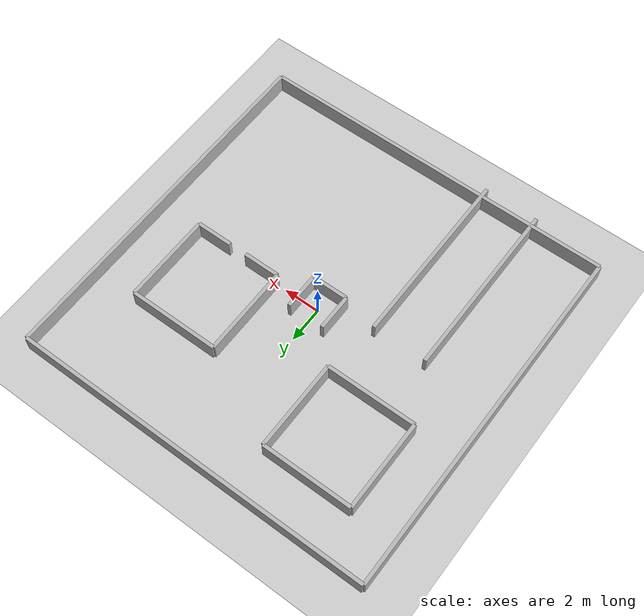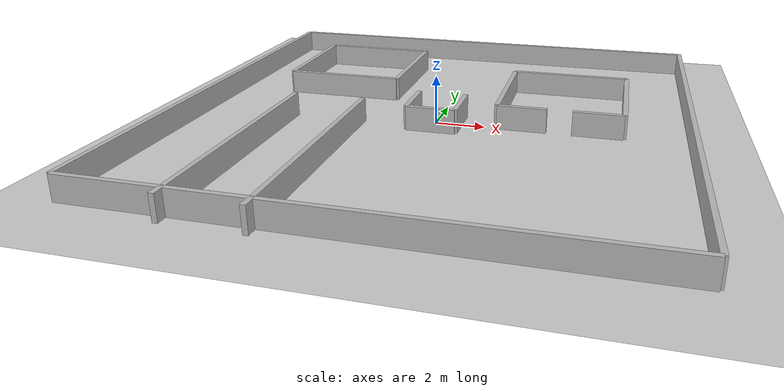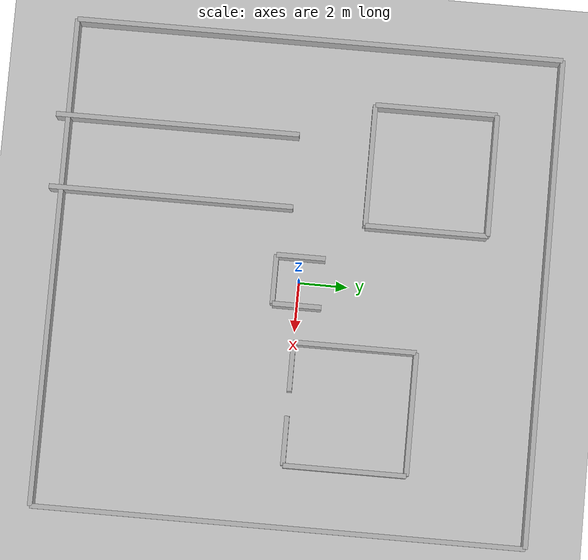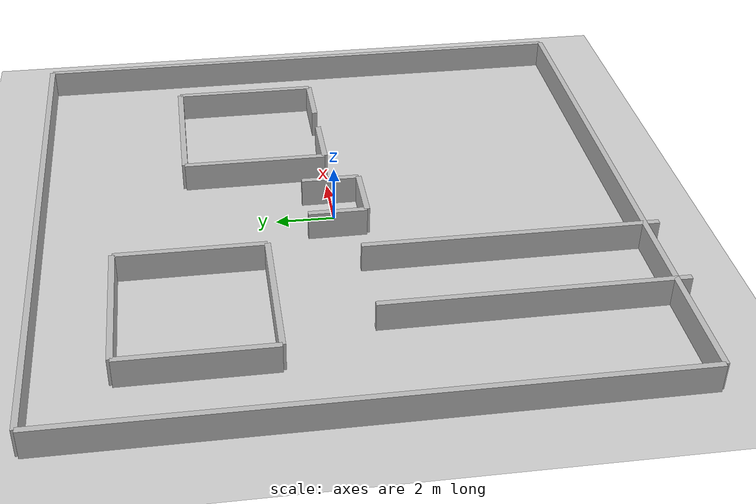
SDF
<sdf version="1.6">
  <world name="indoor_test">
    <include>
      <uri>model://ground_plane</uri>
    </include>
    <include>
      <uri>model://sun</uri>
    </include>

    <!-- Smaller U-shape wall around spawn (2x2m) -->
    <model name="spawn_shroud_small">
      <static>true</static>
      <link name="walls">
        <!-- Back wall -->
        <visual name="u_back">
          <pose>0 -1 0.5 0 0 0</pose>
          <geometry><box><size>2 0.2 1</size></box></geometry>
        </visual>
        <collision name="u_back">
          <pose>0 -1 0.5 0 0 0</pose>
          <geometry><box><size>2 0.2 1</size></box></geometry>
        </collision>

        <!-- Left wall -->
        <visual name="u_left">
          <pose>-1 0 0.5 0 0 0</pose>
          <geometry><box><size>0.2 2 1</size></box></geometry>
        </visual>
        <collision name="u_left">
          <pose>-1 0 0.5 0 0 0</pose>
          <geometry><box><size>0.2 2 1</size></box></geometry>
        </collision>

        <!-- Right wall -->
        <visual name="u_right">
          <pose>1 0 0.5 0 0 0</pose>
          <geometry><box><size>0.2 2 1</size></box></geometry>
        </visual>
        <collision name="u_right">
          <pose>1 0 0.5 0 0 0</pose>
          <geometry><box><size>0.2 2 1</size></box></geometry>
        </collision>
      </link>
    </model>

    <!-- Outer Walls (20x20 Arena) -->
    <model name="outer_walls">
      <static>true</static>
      <link name="walls">
        <visual name="north">
          <pose>0 10 0.5 0 0 0</pose>
          <geometry><box><size>20 0.2 1</size></box></geometry>
        </visual>
        <collision name="north">
          <pose>0 10 0.5 0 0 0</pose>
          <geometry><box><size>20 0.2 1</size></box></geometry>
        </collision>

        <visual name="south">
          <pose>0 -10 0.5 0 0 0</pose>
          <geometry><box><size>20 0.2 1</size></box></geometry>
        </visual>
        <collision name="south">
          <pose>0 -10 0.5 0 0 0</pose>
          <geometry><box><size>20 0.2 1</size></box></geometry>
        </collision>

        <visual name="west">
          <pose>-10 0 0.5 0 0 0</pose>
          <geometry><box><size>0.2 20 1</size></box></geometry>
        </visual>
        <collision name="west">
          <pose>-10 0 0.5 0 0 0</pose>
          <geometry><box><size>0.2 20 1</size></box></geometry>
        </collision>

        <visual name="east">
          <pose>10 0 0.5 0 0 0</pose>
          <geometry><box><size>0.2 20 1</size></box></geometry>
        </visual>
        <collision name="east">
          <pose>10 0 0.5 0 0 0</pose>
          <geometry><box><size>0.2 20 1</size></box></geometry>
        </collision>
      </link>
    </model>

    <!-- Corridor (Widened to 3m) -->
    <model name="corridor">
      <static>true</static>
      <link name="walls">
        <visual name="c_wall1">
          <pose>-6 -5.5 0.5 0 0 0</pose>
          <geometry><box><size>0.2 10 1</size></box></geometry>
        </visual>
        <collision name="c_wall1">
          <pose>-6 -5.5 0.5 0 0 0</pose>
          <geometry><box><size>0.2 10 1</size></box></geometry>
        </collision>

        <visual name="c_wall2">
          <pose>-3 -5.5 0.5 0 0 0</pose>
          <geometry><box><size>0.2 10 1</size></box></geometry>
        </visual>
        <collision name="c_wall2">
          <pose>-3 -5.5 0.5 0 0 0</pose>
          <geometry><box><size>0.2 10 1</size></box></geometry>
        </collision>
      </link>
    </model>

    <!-- Room 1 (5x5m) with doorway gap -->
    <model name="room_1">
      <static>true</static>
      <link name="walls">
        <visual name="r1_west">
          <pose>2.5 2.5 0.5 0 0 0</pose>
          <geometry><box><size>0.2 5 1</size></box></geometry>
        </visual>
        <collision name="r1_west">
          <pose>2.5 2.5 0.5 0 0 0</pose>
          <geometry><box><size>0.2 5 1</size></box></geometry>
        </collision>

        <visual name="r1_east">
          <pose>7.5 2.5 0.5 0 0 0</pose>
          <geometry><box><size>0.2 5 1</size></box></geometry>
        </visual>
        <collision name="r1_east">
          <pose>7.5 2.5 0.5 0 0 0</pose>
          <geometry><box><size>0.2 5 1</size></box></geometry>
        </collision>

        <visual name="r1_north">
          <pose>5 5 0.5 0 0 0</pose>
          <geometry><box><size>5 0.2 1</size></box></geometry>
        </visual>
        <collision name="r1_north">
          <pose>5 5 0.5 0 0 0</pose>
          <geometry><box><size>5 0.2 1</size></box></geometry>
        </collision>

        <!-- South split for doorway -->
        <visual name="r1_south_left">
          <pose>3.5 0 0.5 0 0 0</pose>
          <geometry><box><size>2 0.2 1</size></box></geometry>
        </visual>
        <collision name="r1_south_left">
          <pose>3.5 0 0.5 0 0 0</pose>
          <geometry><box><size>2 0.2 1</size></box></geometry>
        </collision>

        <visual name="r1_south_right">
          <pose>6.5 0 0.5 0 0 0</pose>
          <geometry><box><size>2 0.2 1</size></box></geometry>
        </visual>
        <collision name="r1_south_right">
          <pose>6.5 0 0.5 0 0 0</pose>
          <geometry><box><size>2 0.2 1</size></box></geometry>
        </collision>
      </link>
    </model>

    <!-- Room 2 (also 5x5m) -->
    <model name="room_2">
      <static>true</static>
      <link name="walls">
        <visual name="r2_west">
          <pose>-7.5 5 0.5 0 0 0</pose>
          <geometry><box><size>0.2 5 1</size></box></geometry>
        </visual>
        <collision name="r2_west">
          <pose>-7.5 5 0.5 0 0 0</pose>
          <geometry><box><size>0.2 5 1</size></box></geometry>
        </collision>

        <visual name="r2_east">
          <pose>-2.5 5 0.5 0 0 0</pose>
          <geometry><box><size>0.2 5 1</size></box></geometry>
        </visual>
        <collision name="r2_east">
          <pose>-2.5 5 0.5 0 0 0</pose>
          <geometry><box><size>0.2 5 1</size></box></geometry>
        </collision>

        <visual name="r2_north">
          <pose>-5 7.5 0.5 0 0 0</pose>
          <geometry><box><size>5 0.2 1</size></box></geometry>
        </visual>
        <collision name="r2_north">
          <pose>-5 7.5 0.5 0 0 0</pose>
          <geometry><box><size>5 0.2 1</size></box></geometry>
        </collision>

        <visual name="r2_south">
          <pose>-5 2.5 0.5 0 0 0</pose>
          <geometry><box><size>5 0.2 1</size></box></geometry>
        </visual>
        <collision name="r2_south">
          <pose>-5 2.5 0.5 0 0 0</pose>
          <geometry><box><size>5 0.2 1</size></box></geometry>
        </collision>
      </link>
    </model>

  </world>
</sdf>
